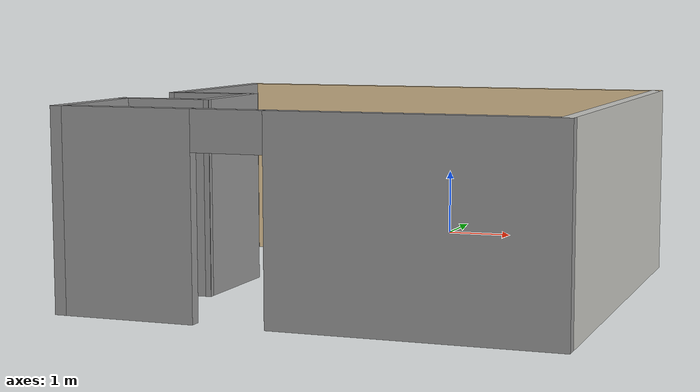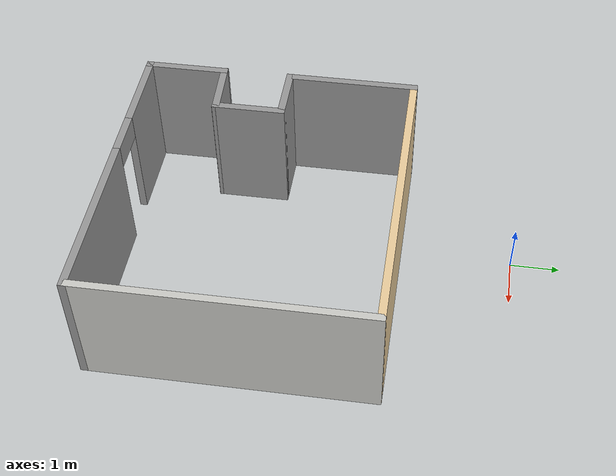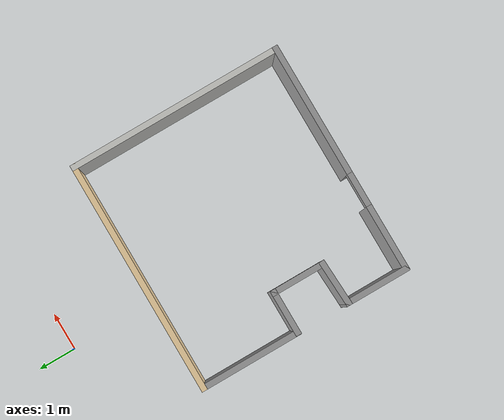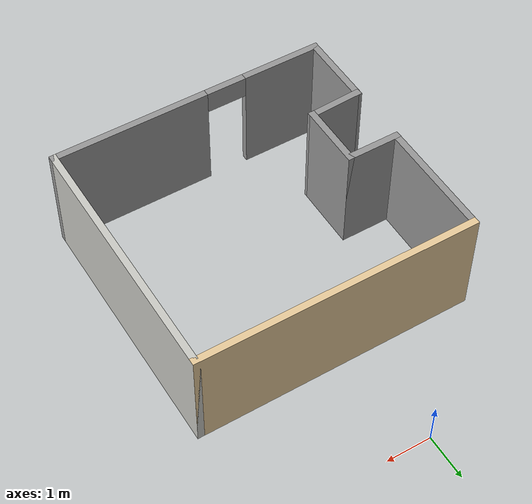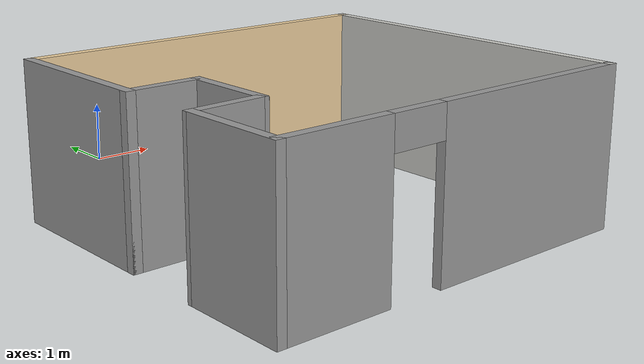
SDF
<?xml version='1.0'?>
<sdf version='1.6'>
  <model name='test_room'>
    <pose frame=''>0.648336 -5.14 0 0 -0 0</pose>
    <link name='Wall_0'>
      <collision name='Wall_0_Collision'>
        <geometry>
          <box>
            <size>2.75 0.15 2.5</size>
          </box>
        </geometry>
        <pose frame=''>0 0 1.25 0 -0 0</pose>
      </collision>
      <visual name='Wall_0_Visual'>
        <pose frame=''>0 0 1.25 0 -0 0</pose>
        <geometry>
          <box>
            <size>2.75 0.15 2.5</size>
          </box>
        </geometry>
        <material>
          <script>
            <uri>file://media/materials/scripts/gazebo.material</uri>
            <name>Gazebo/Grey</name>
          </script>
          <ambient>1 1 1 1</ambient>
        </material>
        <meta>
          <layer>0</layer>
        </meta>
      </visual>
      <pose frame=''>-3.04834 1.5 0 0 -0 1.5708</pose>
    </link>
    <link name='Wall_1'>
      <collision name='Wall_1_Collision'>
        <geometry>
          <box>
            <size>6.25 0.15 2.5</size>
          </box>
        </geometry>
        <pose frame=''>0 0 1.25 0 -0 0</pose>
      </collision>
      <visual name='Wall_1_Visual'>
        <pose frame=''>0 0 1.25 0 -0 0</pose>
        <geometry>
          <box>
            <size>6.25 0.15 2.5</size>
          </box>
        </geometry>
        <material>
          <script>
            <uri>file://media/materials/scripts/gazebo.material</uri>
            <name>Gazebo/Grey</name>
          </script>
          <ambient>0.921569 0.807843 0.615686 1</ambient>
        </material>
        <meta>
          <layer>0</layer>
        </meta>
      </visual>
      <pose frame=''>0.001664 2.8 0 0 -0 0</pose>
    </link>
    <link name='Wall_2'>
      <collision name='Wall_2_Collision'>
        <geometry>
          <box>
            <size>5.75 0.15 2.5</size>
          </box>
        </geometry>
        <pose frame=''>0 0 1.25 0 -0 0</pose>
      </collision>
      <visual name='Wall_2_Visual'>
        <pose frame=''>0 0 1.25 0 -0 0</pose>
        <geometry>
          <box>
            <size>5.75 0.15 2.5</size>
          </box>
        </geometry>
        <material>
          <script>
            <uri>file://media/materials/scripts/gazebo.material</uri>
            <name>Gazebo/CeilingTiled</name>
          </script>
          <ambient>1 1 1 1</ambient>
        </material>
        <meta>
          <layer>0</layer>
        </meta>
      </visual>
      <pose frame=''>3.05166 0 0 0 0 -1.5708</pose>
    </link>
    <link name='Wall_3'>
      <pose frame=''>0.001664 -2.8 0 0 -0 3.14159</pose>
      <visual name='Wall_3_Visual_0'>
        <pose frame=''>-1.3589 0 1.25 0 -0 0</pose>
        <geometry>
          <box>
            <size>3.5322 0.15 2.5</size>
          </box>
        </geometry>
        <material>
          <script>
            <uri>file://media/materials/scripts/gazebo.material</uri>
            <name>Gazebo/Grey</name>
          </script>
          <ambient>1 1 1 1</ambient>
        </material>
        <meta>
          <layer>0</layer>
        </meta>
      </visual>
      <collision name='Wall_3_Collision_0'>
        <geometry>
          <box>
            <size>3.5322 0.15 2.5</size>
          </box>
        </geometry>
        <pose frame=''>-1.3589 0 1.25 0 -0 0</pose>
      </collision>
      <visual name='Wall_3_Visual_1'>
        <pose frame=''>2.2161 0 1.25 0 -0 0</pose>
        <geometry>
          <box>
            <size>1.8178 0.15 2.5</size>
          </box>
        </geometry>
        <material>
          <script>
            <uri>file://media/materials/scripts/gazebo.material</uri>
            <name>Gazebo/Grey</name>
          </script>
          <ambient>1 1 1 1</ambient>
        </material>
        <meta>
          <layer>0</layer>
        </meta>
      </visual>
      <collision name='Wall_3_Collision_1'>
        <geometry>
          <box>
            <size>1.8178 0.15 2.5</size>
          </box>
        </geometry>
        <pose frame=''>2.2161 0 1.25 0 -0 0</pose>
      </collision>
      <visual name='Wall_3_Visual_2'>
        <pose frame=''>0.8572 0 2.25 0 -0 0</pose>
        <geometry>
          <box>
            <size>0.9 0.15 0.5</size>
          </box>
        </geometry>
        <material>
          <script>
            <uri>file://media/materials/scripts/gazebo.material</uri>
            <name>Gazebo/Grey</name>
          </script>
          <ambient>1 1 1 1</ambient>
        </material>
        <meta>
          <layer>0</layer>
        </meta>
      </visual>
      <collision name='Wall_3_Collision_2'>
        <geometry>
          <box>
            <size>0.9 0.15 0.5</size>
          </box>
        </geometry>
        <pose frame=''>0.8572 0 2.25 0 -0 0</pose>
      </collision>
    </link>
    <link name='Wall_4'>
      <collision name='Wall_4_Collision'>
        <geometry>
          <box>
            <size>1.75 0.15 2.5</size>
          </box>
        </geometry>
        <pose frame=''>0 0 1.25 0 -0 0</pose>
      </collision>
      <visual name='Wall_4_Visual'>
        <pose frame=''>0 0 1.25 0 -0 0</pose>
        <geometry>
          <box>
            <size>1.75 0.15 2.5</size>
          </box>
        </geometry>
        <material>
          <script>
            <uri>file://media/materials/scripts/gazebo.material</uri>
            <name>Gazebo/Grey</name>
          </script>
          <ambient>1 1 1 1</ambient>
        </material>
        <meta>
          <layer>0</layer>
        </meta>
      </visual>
      <pose frame=''>-3.04834 -2 0 0 -0 1.5708</pose>
    </link>
    <link name='Wall_6'>
      <collision name='Wall_6_Collision'>
        <geometry>
          <box>
            <size>1.25 0.15 2.5</size>
          </box>
        </geometry>
        <pose frame=''>0 0 1.25 0 -0 0</pose>
      </collision>
      <visual name='Wall_6_Visual'>
        <pose frame=''>0 0 1.25 0 -0 0</pose>
        <geometry>
          <box>
            <size>1.25 0.15 2.5</size>
          </box>
        </geometry>
        <material>
          <script>
            <uri>file://media/materials/scripts/gazebo.material</uri>
            <name>Gazebo/Grey</name>
          </script>
          <ambient>1 1 1 1</ambient>
        </material>
        <meta>
          <layer>0</layer>
        </meta>
      </visual>
      <pose frame=''>-2.49834 0.2 0 0 -0 0</pose>
    </link>
    <link name='Wall_7'>
      <collision name='Wall_7_Collision'>
        <geometry>
          <box>
            <size>1.5 0.15 2.5</size>
          </box>
        </geometry>
        <pose frame=''>0 0 1.25 0 -0 0</pose>
      </collision>
      <visual name='Wall_7_Visual'>
        <pose frame=''>0 0 1.25 0 -0 0</pose>
        <geometry>
          <box>
            <size>1.5 0.15 2.5</size>
          </box>
        </geometry>
        <material>
          <script>
            <uri>file://media/materials/scripts/gazebo.material</uri>
            <name>Gazebo/Grey</name>
          </script>
          <ambient>1 1 1 1</ambient>
        </material>
        <meta>
          <layer>0</layer>
        </meta>
      </visual>
      <pose frame=''>-1.94834 -0.475 0 0 0 -1.5708</pose>
    </link>
    <link name='Wall_8'>
      <collision name='Wall_8_Collision'>
        <geometry>
          <box>
            <size>1.25114 0.15 2.5</size>
          </box>
        </geometry>
        <pose frame=''>0 0 1.25 0 -0 0</pose>
      </collision>
      <visual name='Wall_8_Visual'>
        <pose frame=''>0 0 1.25 0 -0 0</pose>
        <geometry>
          <box>
            <size>1.25114 0.15 2.5</size>
          </box>
        </geometry>
        <material>
          <script>
            <uri>file://media/materials/scripts/gazebo.material</uri>
            <name>Gazebo/Grey</name>
          </script>
          <ambient>1 1 1 1</ambient>
        </material>
        <meta>
          <layer>0</layer>
        </meta>
      </visual>
      <pose frame=''>-2.49834 -1.175 0 0 0 -3.09617</pose>
    </link>
    <static>1</static>
  </model>
</sdf>
